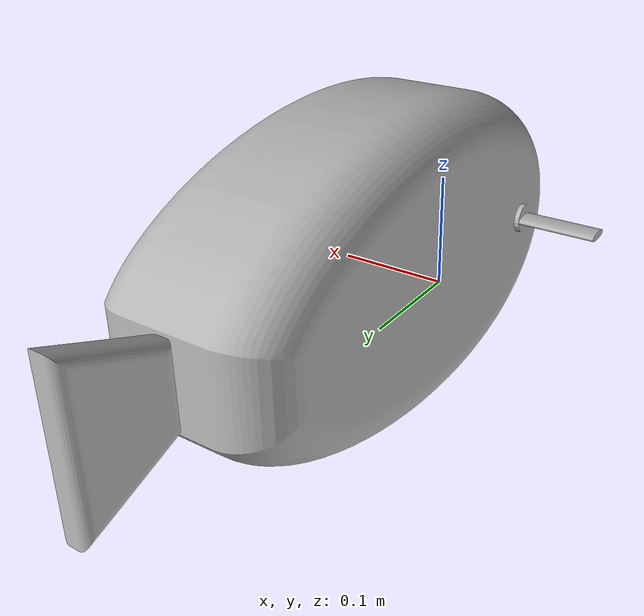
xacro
<?xml version="1.0" ?>
<robot name="uuv" xmlns:xacro="http://www.ros.org/wiki/xacro">

<xacro:include filename="$(find uuv_description)/urdf/materials.xacro" />
<xacro:include filename="$(find uuv_description)/urdf/uuv.trans" />
<xacro:include filename="$(find uuv_description)/urdf/uuv.gazebo" />
<link name="base_link">
  <inertial>
    <origin rpy="0 0 0" xyz="0.09000000503232272 -0.010796178359497892 -1.0333234364006292e-09"/>
    <mass value="166.4624626309523"/>
    <inertia ixx="3.665512" ixy="-0.0" ixz="0.0" iyy="1.315964" iyz="-0.0" izz="3.173539"/>
  </inertial>
  <visual>
    <origin rpy="0 0 0" xyz="0 0 0"/>
    <geometry>
      <mesh filename="package://uuv_description/meshes/base_link.stl" scale="0.001 0.001 0.001"/>
    </geometry>
    <material name="silver"/>
  </visual>
  <collision>
    <origin rpy="0 0 0" xyz="0 0 0"/>
    <geometry>
      <mesh filename="package://uuv_description/meshes/base_link.stl" scale="0.001 0.001 0.001"/>
    </geometry>
  </collision>
</link>

<link name="caudal_fin_1">
  <inertial>
    <origin rpy="0 0 0" xyz="-2.7755575615628914e-17 0.05540023346102746 3.083057364960951e-11"/>
    <mass value="2.679046633373485"/>
    <inertia ixx="0.00546" ixy="-0.0" ixz="-0.0" iyy="0.003602" iyz="0.0" izz="0.002234"/>
  </inertial>
  <visual>
    <origin rpy="0 0 0" xyz="-0.09 -0.250554 -0.0"/>
    <geometry>
      <mesh filename="package://uuv_description/meshes/caudal_fin_1.stl" scale="0.001 0.001 0.001"/>
    </geometry>
    <material name="silver"/>
  </visual>
  <collision>
    <origin rpy="0 0 0" xyz="-0.09 -0.250554 -0.0"/>
    <geometry>
      <mesh filename="package://uuv_description/meshes/caudal_fin_1.stl" scale="0.001 0.001 0.001"/>
    </geometry>
  </collision>
</link>

<link name="fin_1">
  <inertial>
    <origin rpy="0 0 0" xyz="0.04000000000000001 5.282692747909934e-05 -2.993027377205859e-05"/>
    <mass value="0.125915999373811"/>
    <inertia ixx="7e-06" ixy="0.0" ixz="-0.0" iyy="6.8e-05" iyz="-0.0" izz="7.4e-05"/>
  </inertial>
  <visual>
    <origin rpy="0 0 0" xyz="-0.185 0.175 -0.0"/>
    <geometry>
      <mesh filename="package://uuv_description/meshes/fin_1.stl" scale="0.001 0.001 0.001"/>
    </geometry>
    <material name="silver"/>
  </visual>
  <collision>
    <origin rpy="0 0 0" xyz="-0.185 0.175 -0.0"/>
    <geometry>
      <mesh filename="package://uuv_description/meshes/fin_1.stl" scale="0.001 0.001 0.001"/>
    </geometry>
  </collision>
</link>

<link name="fin_2">
  <inertial>
    <origin rpy="0 0 0" xyz="-0.04 5.282692747904383e-05 -2.993027377205859e-05"/>
    <mass value="0.125915999373811"/>
    <inertia ixx="7e-06" ixy="-0.0" ixz="-0.0" iyy="6.8e-05" iyz="-0.0" izz="7.4e-05"/>
  </inertial>
  <visual>
    <origin rpy="0 0 0" xyz="0.005 0.175 -0.0"/>
    <geometry>
      <mesh filename="package://uuv_description/meshes/fin_2.stl" scale="0.001 0.001 0.001"/>
    </geometry>
    <material name="silver"/>
  </visual>
  <collision>
    <origin rpy="0 0 0" xyz="0.005 0.175 -0.0"/>
    <geometry>
      <mesh filename="package://uuv_description/meshes/fin_2.stl" scale="0.001 0.001 0.001"/>
    </geometry>
  </collision>
</link>

<joint name="Rigid1" type="fixed">
  <origin rpy="0 0 0" xyz="0.09 0.250554 0.0"/>
  <parent link="base_link"/>
  <child link="caudal_fin_1"/>
</joint>

<joint name="Rigid2" type="fixed">
  <origin rpy="0 0 0" xyz="0.185 -0.175 0.0"/>
  <parent link="base_link"/>
  <child link="fin_1"/>
</joint>

<joint name="Rigid3" type="fixed">
  <origin rpy="0 0 0" xyz="-0.005 -0.175 0.0"/>
  <parent link="base_link"/>
  <child link="fin_2"/>
</joint>

</robot>

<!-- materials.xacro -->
<robot name="uuv" xmlns:xacro="http://www.ros.org/wiki/xacro" >

<material name="silver">
  <color rgba="0.700 0.700 0.700 1.000"/>
</material>

</robot>

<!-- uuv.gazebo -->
<robot name="uuv" xmlns:xacro="http://www.ros.org/wiki/xacro" >

<xacro:property name="body_color" value="Gazebo/Silver" />

<gazebo>
  <plugin filename="libgazebo_ros_control.so" name="control"/>
</gazebo>
<gazebo reference="base_link">
  <material>${body_color}</material>
  <mu1>0.2</mu1>
  <mu2>0.2</mu2>
  <selfCollide>true</selfCollide>
  <gravity>true</gravity>
</gazebo>

<gazebo reference="caudal_fin_1">
  <material>${body_color}</material>
  <mu1>0.2</mu1>
  <mu2>0.2</mu2>
  <selfCollide>true</selfCollide>
</gazebo>

<gazebo reference="fin_1">
  <material>${body_color}</material>
  <mu1>0.2</mu1>
  <mu2>0.2</mu2>
  <selfCollide>true</selfCollide>
</gazebo>

<gazebo reference="fin_2">
  <material>${body_color}</material>
  <mu1>0.2</mu1>
  <mu2>0.2</mu2>
  <selfCollide>true</selfCollide>
</gazebo>

</robot>
